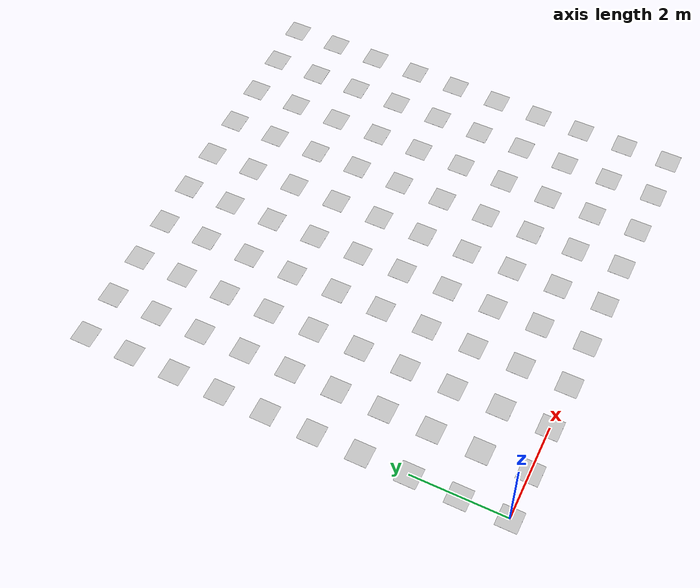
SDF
<sdf version="1.7">
 <world name="default">
  <model name="aruco_2_100">
   <static>1</static>
   <link name="aruco_2_100_link">
    <visual name="visual_marker_2_0">
     <pose>0 9 0 0 -0 1.5708</pose>
     <cast_shadows>0</cast_shadows>
     <geometry><box><size>0.446667 0.446667 0.001</size></box></geometry>
     <material>
      <script>
       <uri>model://aruco_map_txt/materials/scripts</uri>
       <uri>model://aruco_map_txt/materials/textures</uri>
       <name>aruco/marker_2_0</name>
      </script>
     </material>
    </visual>
    <visual name="visual_marker_2_1">
     <pose>1 9 0 0 -0 1.5708</pose>
     <cast_shadows>0</cast_shadows>
     <geometry><box><size>0.446667 0.446667 0.001</size></box></geometry>
     <material>
      <script>
       <uri>model://aruco_map_txt/materials/scripts</uri>
       <uri>model://aruco_map_txt/materials/textures</uri>
       <name>aruco/marker_2_1</name>
      </script>
     </material>
    </visual>
    <visual name="visual_marker_2_2">
     <pose>2 9 0 0 -0 1.5708</pose>
     <cast_shadows>0</cast_shadows>
     <geometry><box><size>0.446667 0.446667 0.001</size></box></geometry>
     <material>
      <script>
       <uri>model://aruco_map_txt/materials/scripts</uri>
       <uri>model://aruco_map_txt/materials/textures</uri>
       <name>aruco/marker_2_2</name>
      </script>
     </material>
    </visual>
    <visual name="visual_marker_2_3">
     <pose>3 9 0 0 -0 1.5708</pose>
     <cast_shadows>0</cast_shadows>
     <geometry><box><size>0.446667 0.446667 0.001</size></box></geometry>
     <material>
      <script>
       <uri>model://aruco_map_txt/materials/scripts</uri>
       <uri>model://aruco_map_txt/materials/textures</uri>
       <name>aruco/marker_2_3</name>
      </script>
     </material>
    </visual>
    <visual name="visual_marker_2_4">
     <pose>4 9 0 0 -0 1.5708</pose>
     <cast_shadows>0</cast_shadows>
     <geometry><box><size>0.446667 0.446667 0.001</size></box></geometry>
     <material>
      <script>
       <uri>model://aruco_map_txt/materials/scripts</uri>
       <uri>model://aruco_map_txt/materials/textures</uri>
       <name>aruco/marker_2_4</name>
      </script>
     </material>
    </visual>
    <visual name="visual_marker_2_5">
     <pose>5 9 0 0 -0 1.5708</pose>
     <cast_shadows>0</cast_shadows>
     <geometry><box><size>0.446667 0.446667 0.001</size></box></geometry>
     <material>
      <script>
       <uri>model://aruco_map_txt/materials/scripts</uri>
       <uri>model://aruco_map_txt/materials/textures</uri>
       <name>aruco/marker_2_5</name>
      </script>
     </material>
    </visual>
    <visual name="visual_marker_2_6">
     <pose>6 9 0 0 -0 1.5708</pose>
     <cast_shadows>0</cast_shadows>
     <geometry><box><size>0.446667 0.446667 0.001</size></box></geometry>
     <material>
      <script>
       <uri>model://aruco_map_txt/materials/scripts</uri>
       <uri>model://aruco_map_txt/materials/textures</uri>
       <name>aruco/marker_2_6</name>
      </script>
     </material>
    </visual>
    <visual name="visual_marker_2_7">
     <pose>7 9 0 0 -0 1.5708</pose>
     <cast_shadows>0</cast_shadows>
     <geometry><box><size>0.446667 0.446667 0.001</size></box></geometry>
     <material>
      <script>
       <uri>model://aruco_map_txt/materials/scripts</uri>
       <uri>model://aruco_map_txt/materials/textures</uri>
       <name>aruco/marker_2_7</name>
      </script>
     </material>
    </visual>
    <visual name="visual_marker_2_8">
     <pose>8 9 0 0 -0 1.5708</pose>
     <cast_shadows>0</cast_shadows>
     <geometry><box><size>0.446667 0.446667 0.001</size></box></geometry>
     <material>
      <script>
       <uri>model://aruco_map_txt/materials/scripts</uri>
       <uri>model://aruco_map_txt/materials/textures</uri>
       <name>aruco/marker_2_8</name>
      </script>
     </material>
    </visual>
    <visual name="visual_marker_2_9">
     <pose>9 9 0 0 -0 1.5708</pose>
     <cast_shadows>0</cast_shadows>
     <geometry><box><size>0.446667 0.446667 0.001</size></box></geometry>
     <material>
      <script>
       <uri>model://aruco_map_txt/materials/scripts</uri>
       <uri>model://aruco_map_txt/materials/textures</uri>
       <name>aruco/marker_2_9</name>
      </script>
     </material>
    </visual>
    <visual name="visual_marker_2_10">
     <pose>0 8 0 0 -0 1.5708</pose>
     <cast_shadows>0</cast_shadows>
     <geometry><box><size>0.446667 0.446667 0.001</size></box></geometry>
     <material>
      <script>
       <uri>model://aruco_map_txt/materials/scripts</uri>
       <uri>model://aruco_map_txt/materials/textures</uri>
       <name>aruco/marker_2_10</name>
      </script>
     </material>
    </visual>
    <visual name="visual_marker_2_11">
     <pose>1 8 0 0 -0 1.5708</pose>
     <cast_shadows>0</cast_shadows>
     <geometry><box><size>0.446667 0.446667 0.001</size></box></geometry>
     <material>
      <script>
       <uri>model://aruco_map_txt/materials/scripts</uri>
       <uri>model://aruco_map_txt/materials/textures</uri>
       <name>aruco/marker_2_11</name>
      </script>
     </material>
    </visual>
    <visual name="visual_marker_2_12">
     <pose>2 8 0 0 -0 1.5708</pose>
     <cast_shadows>0</cast_shadows>
     <geometry><box><size>0.446667 0.446667 0.001</size></box></geometry>
     <material>
      <script>
       <uri>model://aruco_map_txt/materials/scripts</uri>
       <uri>model://aruco_map_txt/materials/textures</uri>
       <name>aruco/marker_2_12</name>
      </script>
     </material>
    </visual>
    <visual name="visual_marker_2_13">
     <pose>3 8 0 0 -0 1.5708</pose>
     <cast_shadows>0</cast_shadows>
     <geometry><box><size>0.446667 0.446667 0.001</size></box></geometry>
     <material>
      <script>
       <uri>model://aruco_map_txt/materials/scripts</uri>
       <uri>model://aruco_map_txt/materials/textures</uri>
       <name>aruco/marker_2_13</name>
      </script>
     </material>
    </visual>
    <visual name="visual_marker_2_14">
     <pose>4 8 0 0 -0 1.5708</pose>
     <cast_shadows>0</cast_shadows>
     <geometry><box><size>0.446667 0.446667 0.001</size></box></geometry>
     <material>
      <script>
       <uri>model://aruco_map_txt/materials/scripts</uri>
       <uri>model://aruco_map_txt/materials/textures</uri>
       <name>aruco/marker_2_14</name>
      </script>
     </material>
    </visual>
    <visual name="visual_marker_2_15">
     <pose>5 8 0 0 -0 1.5708</pose>
     <cast_shadows>0</cast_shadows>
     <geometry><box><size>0.446667 0.446667 0.001</size></box></geometry>
     <material>
      <script>
       <uri>model://aruco_map_txt/materials/scripts</uri>
       <uri>model://aruco_map_txt/materials/textures</uri>
       <name>aruco/marker_2_15</name>
      </script>
     </material>
    </visual>
    <visual name="visual_marker_2_16">
     <pose>6 8 0 0 -0 1.5708</pose>
     <cast_shadows>0</cast_shadows>
     <geometry><box><size>0.446667 0.446667 0.001</size></box></geometry>
     <material>
      <script>
       <uri>model://aruco_map_txt/materials/scripts</uri>
       <uri>model://aruco_map_txt/materials/textures</uri>
       <name>aruco/marker_2_16</name>
      </script>
     </material>
    </visual>
    <visual name="visual_marker_2_17">
     <pose>7 8 0 0 -0 1.5708</pose>
     <cast_shadows>0</cast_shadows>
     <geometry><box><size>0.446667 0.446667 0.001</size></box></geometry>
     <material>
      <script>
       <uri>model://aruco_map_txt/materials/scripts</uri>
       <uri>model://aruco_map_txt/materials/textures</uri>
       <name>aruco/marker_2_17</name>
      </script>
     </material>
    </visual>
    <visual name="visual_marker_2_18">
     <pose>8 8 0 0 -0 1.5708</pose>
     <cast_shadows>0</cast_shadows>
     <geometry><box><size>0.446667 0.446667 0.001</size></box></geometry>
     <material>
      <script>
       <uri>model://aruco_map_txt/materials/scripts</uri>
       <uri>model://aruco_map_txt/materials/textures</uri>
       <name>aruco/marker_2_18</name>
      </script>
     </material>
    </visual>
    <visual name="visual_marker_2_19">
     <pose>9 8 0 0 -0 1.5708</pose>
     <cast_shadows>0</cast_shadows>
     <geometry><box><size>0.446667 0.446667 0.001</size></box></geometry>
     <material>
      <script>
       <uri>model://aruco_map_txt/materials/scripts</uri>
       <uri>model://aruco_map_txt/materials/textures</uri>
       <name>aruco/marker_2_19</name>
      </script>
     </material>
    </visual>
    <visual name="visual_marker_2_20">
     <pose>0 7 0 0 -0 1.5708</pose>
     <cast_shadows>0</cast_shadows>
     <geometry><box><size>0.446667 0.446667 0.001</size></box></geometry>
     <material>
      <script>
       <uri>model://aruco_map_txt/materials/scripts</uri>
       <uri>model://aruco_map_txt/materials/textures</uri>
       <name>aruco/marker_2_20</name>
      </script>
     </material>
    </visual>
    <visual name="visual_marker_2_21">
     <pose>1 7 0 0 -0 1.5708</pose>
     <cast_shadows>0</cast_shadows>
     <geometry><box><size>0.446667 0.446667 0.001</size></box></geometry>
     <material>
      <script>
       <uri>model://aruco_map_txt/materials/scripts</uri>
       <uri>model://aruco_map_txt/materials/textures</uri>
       <name>aruco/marker_2_21</name>
      </script>
     </material>
    </visual>
    <visual name="visual_marker_2_22">
     <pose>2 7 0 0 -0 1.5708</pose>
     <cast_shadows>0</cast_shadows>
     <geometry><box><size>0.446667 0.446667 0.001</size></box></geometry>
     <material>
      <script>
       <uri>model://aruco_map_txt/materials/scripts</uri>
       <uri>model://aruco_map_txt/materials/textures</uri>
       <name>aruco/marker_2_22</name>
      </script>
     </material>
    </visual>
    <visual name="visual_marker_2_23">
     <pose>3 7 0 0 -0 1.5708</pose>
     <cast_shadows>0</cast_shadows>
     <geometry><box><size>0.446667 0.446667 0.001</size></box></geometry>
     <material>
      <script>
       <uri>model://aruco_map_txt/materials/scripts</uri>
       <uri>model://aruco_map_txt/materials/textures</uri>
       <name>aruco/marker_2_23</name>
      </script>
     </material>
    </visual>
    <visual name="visual_marker_2_24">
     <pose>4 7 0 0 -0 1.5708</pose>
     <cast_shadows>0</cast_shadows>
     <geometry><box><size>0.446667 0.446667 0.001</size></box></geometry>
     <material>
      <script>
       <uri>model://aruco_map_txt/materials/scripts</uri>
       <uri>model://aruco_map_txt/materials/textures</uri>
       <name>aruco/marker_2_24</name>
      </script>
     </material>
    </visual>
    <visual name="visual_marker_2_25">
     <pose>5 7 0 0 -0 1.5708</pose>
     <cast_shadows>0</cast_shadows>
     <geometry><box><size>0.446667 0.446667 0.001</size></box></geometry>
     <material>
      <script>
       <uri>model://aruco_map_txt/materials/scripts</uri>
       <uri>model://aruco_map_txt/materials/textures</uri>
       <name>aruco/marker_2_25</name>
      </script>
     </material>
    </visual>
    <visual name="visual_marker_2_26">
     <pose>6 7 0 0 -0 1.5708</pose>
     <cast_shadows>0</cast_shadows>
     <geometry><box><size>0.446667 0.446667 0.001</size></box></geometry>
     <material>
      <script>
       <uri>model://aruco_map_txt/materials/scripts</uri>
       <uri>model://aruco_map_txt/materials/textures</uri>
       <name>aruco/marker_2_26</name>
      </script>
     </material>
    </visual>
    <visual name="visual_marker_2_27">
     <pose>7 7 0 0 -0 1.5708</pose>
     <cast_shadows>0</cast_shadows>
     <geometry><box><size>0.446667 0.446667 0.001</size></box></geometry>
     <material>
      <script>
       <uri>model://aruco_map_txt/materials/scripts</uri>
       <uri>model://aruco_map_txt/materials/textures</uri>
       <name>aruco/marker_2_27</name>
      </script>
     </material>
    </visual>
    <visual name="visual_marker_2_28">
     <pose>8 7 0 0 -0 1.5708</pose>
     <cast_shadows>0</cast_shadows>
     <geometry><box><size>0.446667 0.446667 0.001</size></box></geometry>
     <material>
      <script>
       <uri>model://aruco_map_txt/materials/scripts</uri>
       <uri>model://aruco_map_txt/materials/textures</uri>
       <name>aruco/marker_2_28</name>
      </script>
     </material>
    </visual>
    <visual name="visual_marker_2_29">
     <pose>9 7 0 0 -0 1.5708</pose>
     <cast_shadows>0</cast_shadows>
     <geometry><box><size>0.446667 0.446667 0.001</size></box></geometry>
     <material>
      <script>
       <uri>model://aruco_map_txt/materials/scripts</uri>
       <uri>model://aruco_map_txt/materials/textures</uri>
       <name>aruco/marker_2_29</name>
      </script>
     </material>
    </visual>
    <visual name="visual_marker_2_30">
     <pose>0 6 0 0 -0 1.5708</pose>
     <cast_shadows>0</cast_shadows>
     <geometry><box><size>0.446667 0.446667 0.001</size></box></geometry>
     <material>
      <script>
       <uri>model://aruco_map_txt/materials/scripts</uri>
       <uri>model://aruco_map_txt/materials/textures</uri>
       <name>aruco/marker_2_30</name>
      </script>
     </material>
    </visual>
    <visual name="visual_marker_2_31">
     <pose>1 6 0 0 -0 1.5708</pose>
     <cast_shadows>0</cast_shadows>
     <geometry><box><size>0.446667 0.446667 0.001</size></box></geometry>
     <material>
      <script>
       <uri>model://aruco_map_txt/materials/scripts</uri>
       <uri>model://aruco_map_txt/materials/textures</uri>
       <name>aruco/marker_2_31</name>
      </script>
     </material>
    </visual>
    <visual name="visual_marker_2_32">
     <pose>2 6 0 0 -0 1.5708</pose>
     <cast_shadows>0</cast_shadows>
     <geometry><box><size>0.446667 0.446667 0.001</size></box></geometry>
     <material>
      <script>
       <uri>model://aruco_map_txt/materials/scripts</uri>
       <uri>model://aruco_map_txt/materials/textures</uri>
       <name>aruco/marker_2_32</name>
      </script>
     </material>
    </visual>
    <visual name="visual_marker_2_33">
     <pose>3 6 0 0 -0 1.5708</pose>
     <cast_shadows>0</cast_shadows>
     <geometry><box><size>0.446667 0.446667 0.001</size></box></geometry>
     <material>
      <script>
       <uri>model://aruco_map_txt/materials/scripts</uri>
       <uri>model://aruco_map_txt/materials/textures</uri>
       <name>aruco/marker_2_33</name>
      </script>
     </material>
    </visual>
    <visual name="visual_marker_2_34">
     <pose>4 6 0 0 -0 1.5708</pose>
     <cast_shadows>0</cast_shadows>
     <geometry><box><size>0.446667 0.446667 0.001</size></box></geometry>
     <material>
      <script>
       <uri>model://aruco_map_txt/materials/scripts</uri>
       <uri>model://aruco_map_txt/materials/textures</uri>
       <name>aruco/marker_2_34</name>
      </script>
     </material>
    </visual>
    <visual name="visual_marker_2_35">
     <pose>5 6 0 0 -0 1.5708</pose>
     <cast_shadows>0</cast_shadows>
     <geometry><box><size>0.446667 0.446667 0.001</size></box></geometry>
     <material>
      <script>
       <uri>model://aruco_map_txt/materials/scripts</uri>
       <uri>model://aruco_map_txt/materials/textures</uri>
       <name>aruco/marker_2_35</name>
      </script>
     </material>
    </visual>
    <visual name="visual_marker_2_36">
     <pose>6 6 0 0 -0 1.5708</pose>
     <cast_shadows>0</cast_shadows>
     <geometry><box><size>0.446667 0.446667 0.001</size></box></geometry>
     <material>
      <script>
       <uri>model://aruco_map_txt/materials/scripts</uri>
       <uri>model://aruco_map_txt/materials/textures</uri>
       <name>aruco/marker_2_36</name>
      </script>
     </material>
    </visual>
    <visual name="visual_marker_2_37">
     <pose>7 6 0 0 -0 1.5708</pose>
     <cast_shadows>0</cast_shadows>
     <geometry><box><size>0.446667 0.446667 0.001</size></box></geometry>
     <material>
      <script>
       <uri>model://aruco_map_txt/materials/scripts</uri>
       <uri>model://aruco_map_txt/materials/textures</uri>
       <name>aruco/marker_2_37</name>
      </script>
     </material>
    </visual>
    <visual name="visual_marker_2_38">
     <pose>8 6 0 0 -0 1.5708</pose>
     <cast_shadows>0</cast_shadows>
     <geometry><box><size>0.446667 0.446667 0.001</size></box></geometry>
     <material>
      <script>
       <uri>model://aruco_map_txt/materials/scripts</uri>
       <uri>model://aruco_map_txt/materials/textures</uri>
       <name>aruco/marker_2_38</name>
      </script>
     </material>
    </visual>
    <visual name="visual_marker_2_39">
     <pose>9 6 0 0 -0 1.5708</pose>
     <cast_shadows>0</cast_shadows>
     <geometry><box><size>0.446667 0.446667 0.001</size></box></geometry>
     <material>
      <script>
       <uri>model://aruco_map_txt/materials/scripts</uri>
       <uri>model://aruco_map_txt/materials/textures</uri>
       <name>aruco/marker_2_39</name>
      </script>
     </material>
    </visual>
    <visual name="visual_marker_2_40">
     <pose>0 5 0 0 -0 1.5708</pose>
     <cast_shadows>0</cast_shadows>
     <geometry><box><size>0.446667 0.446667 0.001</size></box></geometry>
     <material>
      <script>
       <uri>model://aruco_map_txt/materials/scripts</uri>
       <uri>model://aruco_map_txt/materials/textures</uri>
       <name>aruco/marker_2_40</name>
      </script>
     </material>
    </visual>
    <visual name="visual_marker_2_41">
     <pose>1 5 0 0 -0 1.5708</pose>
     <cast_shadows>0</cast_shadows>
     <geometry><box><size>0.446667 0.446667 0.001</size></box></geometry>
     <material>
      <script>
       <uri>model://aruco_map_txt/materials/scripts</uri>
       <uri>model://aruco_map_txt/materials/textures</uri>
       <name>aruco/marker_2_41</name>
      </script>
     </material>
    </visual>
    <visual name="visual_marker_2_42">
     <pose>2 5 0 0 -0 1.5708</pose>
     <cast_shadows>0</cast_shadows>
     <geometry><box><size>0.446667 0.446667 0.001</size></box></geometry>
     <material>
      <script>
       <uri>model://aruco_map_txt/materials/scripts</uri>
       <uri>model://aruco_map_txt/materials/textures</uri>
       <name>aruco/marker_2_42</name>
      </script>
     </material>
    </visual>
    <visual name="visual_marker_2_43">
     <pose>3 5 0 0 -0 1.5708</pose>
     <cast_shadows>0</cast_shadows>
     <geometry><box><size>0.446667 0.446667 0.001</size></box></geometry>
     <material>
      <script>
       <uri>model://aruco_map_txt/materials/scripts</uri>
       <uri>model://aruco_map_txt/materials/textures</uri>
       <name>aruco/marker_2_43</name>
      </script>
     </material>
    </visual>
    <visual name="visual_marker_2_44">
     <pose>4 5 0 0 -0 1.5708</pose>
     <cast_shadows>0</cast_shadows>
     <geometry><box><size>0.446667 0.446667 0.001</size></box></geometry>
     <material>
      <script>
       <uri>model://aruco_map_txt/materials/scripts</uri>
       <uri>model://aruco_map_txt/materials/textures</uri>
       <name>aruco/marker_2_44</name>
      </script>
     </material>
    </visual>
    <visual name="visual_marker_2_45">
     <pose>5 5 0 0 -0 1.5708</pose>
     <cast_shadows>0</cast_shadows>
     <geometry><box><size>0.446667 0.446667 0.001</size></box></geometry>
     <material>
      <script>
       <uri>model://aruco_map_txt/materials/scripts</uri>
       <uri>model://aruco_map_txt/materials/textures</uri>
       <name>aruco/marker_2_45</name>
      </script>
     </material>
    </visual>
    <visual name="visual_marker_2_46">
     <pose>6 5 0 0 -0 1.5708</pose>
     <cast_shadows>0</cast_shadows>
     <geometry><box><size>0.446667 0.446667 0.001</size></box></geometry>
     <material>
      <script>
       <uri>model://aruco_map_txt/materials/scripts</uri>
       <uri>model://aruco_map_txt/materials/textures</uri>
       <name>aruco/marker_2_46</name>
      </script>
     </material>
    </visual>
    <visual name="visual_marker_2_47">
     <pose>7 5 0 0 -0 1.5708</pose>
     <cast_shadows>0</cast_shadows>
     <geometry><box><size>0.446667 0.446667 0.001</size></box></geometry>
     <material>
      <script>
       <uri>model://aruco_map_txt/materials/scripts</uri>
       <uri>model://aruco_map_txt/materials/textures</uri>
       <name>aruco/marker_2_47</name>
      </script>
     </material>
    </visual>
    <visual name="visual_marker_2_48">
     <pose>8 5 0 0 -0 1.5708</pose>
     <cast_shadows>0</cast_shadows>
     <geometry><box><size>0.446667 0.446667 0.001</size></box></geometry>
     <material>
      <script>
       <uri>model://aruco_map_txt/materials/scripts</uri>
       <uri>model://aruco_map_txt/materials/textures</uri>
       <name>aruco/marker_2_48</name>
      </script>
     </material>
    </visual>
    <visual name="visual_marker_2_49">
     <pose>9 5 0 0 -0 1.5708</pose>
     <cast_shadows>0</cast_shadows>
     <geometry><box><size>0.446667 0.446667 0.001</size></box></geometry>
     <material>
      <script>
       <uri>model://aruco_map_txt/materials/scripts</uri>
       <uri>model://aruco_map_txt/materials/textures</uri>
       <name>aruco/marker_2_49</name>
      </script>
     </material>
    </visual>
    <visual name="visual_marker_2_50">
     <pose>0 4 0 0 -0 1.5708</pose>
     <cast_shadows>0</cast_shadows>
     <geometry><box><size>0.446667 0.446667 0.001</size></box></geometry>
     <material>
      <script>
       <uri>model://aruco_map_txt/materials/scripts</uri>
       <uri>model://aruco_map_txt/materials/textures</uri>
       <name>aruco/marker_2_50</name>
      </script>
     </material>
    </visual>
    <visual name="visual_marker_2_51">
     <pose>1 4 0 0 -0 1.5708</pose>
     <cast_shadows>0</cast_shadows>
     <geometry><box><size>0.446667 0.446667 0.001</size></box></geometry>
     <material>
      <script>
       <uri>model://aruco_map_txt/materials/scripts</uri>
       <uri>model://aruco_map_txt/materials/textures</uri>
       <name>aruco/marker_2_51</name>
      </script>
     </material>
    </visual>
    <visual name="visual_marker_2_52">
     <pose>2 4 0 0 -0 1.5708</pose>
     <cast_shadows>0</cast_shadows>
     <geometry><box><size>0.446667 0.446667 0.001</size></box></geometry>
     <material>
      <script>
       <uri>model://aruco_map_txt/materials/scripts</uri>
       <uri>model://aruco_map_txt/materials/textures</uri>
       <name>aruco/marker_2_52</name>
      </script>
     </material>
    </visual>
    <visual name="visual_marker_2_53">
     <pose>3 4 0 0 -0 1.5708</pose>
     <cast_shadows>0</cast_shadows>
     <geometry><box><size>0.446667 0.446667 0.001</size></box></geometry>
     <material>
      <script>
       <uri>model://aruco_map_txt/materials/scripts</uri>
       <uri>model://aruco_map_txt/materials/textures</uri>
       <name>aruco/marker_2_53</name>
      </script>
     </material>
    </visual>
    <visual name="visual_marker_2_54">
     <pose>4 4 0 0 -0 1.5708</pose>
     <cast_shadows>0</cast_shadows>
     <geometry><box><size>0.446667 0.446667 0.001</size></box></geometry>
     <material>
      <script>
       <uri>model://aruco_map_txt/materials/scripts</uri>
       <uri>model://aruco_map_txt/materials/textures</uri>
       <name>aruco/marker_2_54</name>
      </script>
     </material>
    </visual>
    <visual name="visual_marker_2_55">
     <pose>5 4 0 0 -0 1.5708</pose>
     <cast_shadows>0</cast_shadows>
     <geometry><box><size>0.446667 0.446667 0.001</size></box></geometry>
     <material>
      <script>
       <uri>model://aruco_map_txt/materials/scripts</uri>
       <uri>model://aruco_map_txt/materials/textures</uri>
       <name>aruco/marker_2_55</name>
      </script>
     </material>
    </visual>
    <visual name="visual_marker_2_56">
     <pose>6 4 0 0 -0 1.5708</pose>
     <cast_shadows>0</cast_shadows>
     <geometry><box><size>0.446667 0.446667 0.001</size></box></geometry>
     <material>
      <script>
       <uri>model://aruco_map_txt/materials/scripts</uri>
       <uri>model://aruco_map_txt/materials/textures</uri>
       <name>aruco/marker_2_56</name>
      </script>
     </material>
    </visual>
    <visual name="visual_marker_2_57">
     <pose>7 4 0 0 -0 1.5708</pose>
     <cast_shadows>0</cast_shadows>
     <geometry><box><size>0.446667 0.446667 0.001</size></box></geometry>
     <material>
      <script>
       <uri>model://aruco_map_txt/materials/scripts</uri>
       <uri>model://aruco_map_txt/materials/textures</uri>
       <name>aruco/marker_2_57</name>
      </script>
     </material>
    </visual>
    <visual name="visual_marker_2_58">
     <pose>8 4 0 0 -0 1.5708</pose>
     <cast_shadows>0</cast_shadows>
     <geometry><box><size>0.446667 0.446667 0.001</size></box></geometry>
     <material>
      <script>
       <uri>model://aruco_map_txt/materials/scripts</uri>
       <uri>model://aruco_map_txt/materials/textures</uri>
       <name>aruco/marker_2_58</name>
      </script>
     </material>
    </visual>
    <visual name="visual_marker_2_59">
     <pose>9 4 0 0 -0 1.5708</pose>
     <cast_shadows>0</cast_shadows>
     <geometry><box><size>0.446667 0.446667 0.001</size></box></geometry>
     <material>
      <script>
       <uri>model://aruco_map_txt/materials/scripts</uri>
       <uri>model://aruco_map_txt/materials/textures</uri>
       <name>aruco/marker_2_59</name>
      </script>
     </material>
    </visual>
    <visual name="visual_marker_2_60">
     <pose>0 3 0 0 -0 1.5708</pose>
     <cast_shadows>0</cast_shadows>
     <geometry><box><size>0.446667 0.446667 0.001</size></box></geometry>
     <material>
      <script>
       <uri>model://aruco_map_txt/materials/scripts</uri>
       <uri>model://aruco_map_txt/materials/textures</uri>
       <name>aruco/marker_2_60</name>
      </script>
     </material>
    </visual>
    <visual name="visual_marker_2_61">
     <pose>1 3 0 0 -0 1.5708</pose>
     <cast_shadows>0</cast_shadows>
     <geometry><box><size>0.446667 0.446667 0.001</size></box></geometry>
     <material>
      <script>
       <uri>model://aruco_map_txt/materials/scripts</uri>
       <uri>model://aruco_map_txt/materials/textures</uri>
       <name>aruco/marker_2_61</name>
      </script>
     </material>
    </visual>
    <visual name="visual_marker_2_62">
     <pose>2 3 0 0 -0 1.5708</pose>
     <cast_shadows>0</cast_shadows>
     <geometry><box><size>0.446667 0.446667 0.001</size></box></geometry>
     <material>
      <script>
       <uri>model://aruco_map_txt/materials/scripts</uri>
       <uri>model://aruco_map_txt/materials/textures</uri>
       <name>aruco/marker_2_62</name>
      </script>
     </material>
    </visual>
    <visual name="visual_marker_2_63">
     <pose>3 3 0 0 -0 1.5708</pose>
     <cast_shadows>0</cast_shadows>
     <geometry><box><size>0.446667 0.446667 0.001</size></box></geometry>
     <material>
      <script>
       <uri>model://aruco_map_txt/materials/scripts</uri>
       <uri>model://aruco_map_txt/materials/textures</uri>
       <name>aruco/marker_2_63</name>
      </script>
     </material>
    </visual>
    <visual name="visual_marker_2_64">
     <pose>4 3 0 0 -0 1.5708</pose>
     <cast_shadows>0</cast_shadows>
     <geometry><box><size>0.446667 0.446667 0.001</size></box></geometry>
     <material>
      <script>
       <uri>model://aruco_map_txt/materials/scripts</uri>
       <uri>model://aruco_map_txt/materials/textures</uri>
       <name>aruco/marker_2_64</name>
      </script>
     </material>
    </visual>
    <visual name="visual_marker_2_65">
     <pose>5 3 0 0 -0 1.5708</pose>
     <cast_shadows>0</cast_shadows>
     <geometry><box><size>0.446667 0.446667 0.001</size></box></geometry>
     <material>
      <script>
       <uri>model://aruco_map_txt/materials/scripts</uri>
       <uri>model://aruco_map_txt/materials/textures</uri>
       <name>aruco/marker_2_65</name>
      </script>
     </material>
    </visual>
    <visual name="visual_marker_2_66">
     <pose>6 3 0 0 -0 1.5708</pose>
     <cast_shadows>0</cast_shadows>
     <geometry><box><size>0.446667 0.446667 0.001</size></box></geometry>
     <material>
      <script>
       <uri>model://aruco_map_txt/materials/scripts</uri>
       <uri>model://aruco_map_txt/materials/textures</uri>
       <name>aruco/marker_2_66</name>
      </script>
     </material>
    </visual>
    <visual name="visual_marker_2_67">
     <pose>7 3 0 0 -0 1.5708</pose>
     <cast_shadows>0</cast_shadows>
     <geometry><box><size>0.446667 0.446667 0.001</size></box></geometry>
     <material>
      <script>
       <uri>model://aruco_map_txt/materials/scripts</uri>
       <uri>model://aruco_map_txt/materials/textures</uri>
       <name>aruco/marker_2_67</name>
      </script>
     </material>
    </visual>
    <visual name="visual_marker_2_68">
     <pose>8 3 0 0 -0 1.5708</pose>
     <cast_shadows>0</cast_shadows>
     <geometry><box><size>0.446667 0.446667 0.001</size></box></geometry>
     <material>
      <script>
       <uri>model://aruco_map_txt/materials/scripts</uri>
       <uri>model://aruco_map_txt/materials/textures</uri>
       <name>aruco/marker_2_68</name>
      </script>
     </material>
    </visual>
    <visual name="visual_marker_2_69">
     <pose>9 3 0 0 -0 1.5708</pose>
     <cast_shadows>0</cast_shadows>
     <geometry><box><size>0.446667 0.446667 0.001</size></box></geometry>
     <material>
      <script>
       <uri>model://aruco_map_txt/materials/scripts</uri>
       <uri>model://aruco_map_txt/materials/textures</uri>
       <name>aruco/marker_2_69</name>
      </script>
     </material>
    </visual>
    <visual name="visual_marker_2_70">
     <pose>0 2 0 0 -0 1.5708</pose>
     <cast_shadows>0</cast_shadows>
     <geometry><box><size>0.446667 0.446667 0.001</size></box></geometry>
     <material>
      <script>
       <uri>model://aruco_map_txt/materials/scripts</uri>
       <uri>model://aruco_map_txt/materials/textures</uri>
       <name>aruco/marker_2_70</name>
      </script>
     </material>
    </visual>
    <visual name="visual_marker_2_71">
     <pose>1 2 0 0 -0 1.5708</pose>
     <cast_shadows>0</cast_shadows>
     <geometry><box><size>0.446667 0.446667 0.001</size></box></geometry>
     <material>
      <script>
       <uri>model://aruco_map_txt/materials/scripts</uri>
       <uri>model://aruco_map_txt/materials/textures</uri>
       <name>aruco/marker_2_71</name>
      </script>
     </material>
    </visual>
    <visual name="visual_marker_2_72">
     <pose>2 2 0 0 -0 1.5708</pose>
     <cast_shadows>0</cast_shadows>
     <geometry><box><size>0.446667 0.446667 0.001</size></box></geometry>
     <material>
      <script>
       <uri>model://aruco_map_txt/materials/scripts</uri>
       <uri>model://aruco_map_txt/materials/textures</uri>
       <name>aruco/marker_2_72</name>
      </script>
     </material>
    </visual>
    <visual name="visual_marker_2_73">
     <pose>3 2 0 0 -0 1.5708</pose>
     <cast_shadows>0</cast_shadows>
     <geometry><box><size>0.446667 0.446667 0.001</size></box></geometry>
     <material>
      <script>
       <uri>model://aruco_map_txt/materials/scripts</uri>
       <uri>model://aruco_map_txt/materials/textures</uri>
       <name>aruco/marker_2_73</name>
      </script>
     </material>
    </visual>
    <visual name="visual_marker_2_74">
     <pose>4 2 0 0 -0 1.5708</pose>
     <cast_shadows>0</cast_shadows>
     <geometry><box><size>0.446667 0.446667 0.001</size></box></geometry>
     <material>
      <script>
       <uri>model://aruco_map_txt/materials/scripts</uri>
       <uri>model://aruco_map_txt/materials/textures</uri>
       <name>aruco/marker_2_74</name>
      </script>
     </material>
    </visual>
    <visual name="visual_marker_2_75">
     <pose>5 2 0 0 -0 1.5708</pose>
     <cast_shadows>0</cast_shadows>
     <geometry><box><size>0.446667 0.446667 0.001</size></box></geometry>
     <material>
      <script>
       <uri>model://aruco_map_txt/materials/scripts</uri>
       <uri>model://aruco_map_txt/materials/textures</uri>
       <name>aruco/marker_2_75</name>
      </script>
     </material>
    </visual>
    <visual name="visual_marker_2_76">
     <pose>6 2 0 0 -0 1.5708</pose>
     <cast_shadows>0</cast_shadows>
     <geometry><box><size>0.446667 0.446667 0.001</size></box></geometry>
     <material>
      <script>
       <uri>model://aruco_map_txt/materials/scripts</uri>
       <uri>model://aruco_map_txt/materials/textures</uri>
       <name>aruco/marker_2_76</name>
      </script>
     </material>
    </visual>
    <visual name="visual_marker_2_77">
     <pose>7 2 0 0 -0 1.5708</pose>
     <cast_shadows>0</cast_shadows>
     <geometry><box><size>0.446667 0.446667 0.001</size></box></geometry>
     <material>
      <script>
       <uri>model://aruco_map_txt/materials/scripts</uri>
       <uri>model://aruco_map_txt/materials/textures</uri>
       <name>aruco/marker_2_77</name>
      </script>
     </material>
    </visual>
    <visual name="visual_marker_2_78">
     <pose>8 2 0 0 -0 1.5708</pose>
     <cast_shadows>0</cast_shadows>
     <geometry><box><size>0.446667 0.446667 0.001</size></box></geometry>
     <material>
      <script>
       <uri>model://aruco_map_txt/materials/scripts</uri>
       <uri>model://aruco_map_txt/materials/textures</uri>
       <name>aruco/marker_2_78</name>
      </script>
     </material>
    </visual>
    <visual name="visual_marker_2_79">
     <pose>9 2 0 0 -0 1.5708</pose>
     <cast_shadows>0</cast_shadows>
     <geometry><box><size>0.446667 0.446667 0.001</size></box></geometry>
     <material>
      <script>
       <uri>model://aruco_map_txt/materials/scripts</uri>
       <uri>model://aruco_map_txt/materials/textures</uri>
       <name>aruco/marker_2_79</name>
      </script>
     </material>
    </visual>
    <visual name="visual_marker_2_80">
     <pose>0 1 0 0 -0 1.5708</pose>
     <cast_shadows>0</cast_shadows>
     <geometry><box><size>0.446667 0.446667 0.001</size></box></geometry>
     <material>
      <script>
       <uri>model://aruco_map_txt/materials/scripts</uri>
       <uri>model://aruco_map_txt/materials/textures</uri>
       <name>aruco/marker_2_80</name>
      </script>
     </material>
    </visual>
    <visual name="visual_marker_2_81">
     <pose>1 1 0 0 -0 1.5708</pose>
     <cast_shadows>0</cast_shadows>
     <geometry><box><size>0.446667 0.446667 0.001</size></box></geometry>
     <material>
      <script>
       <uri>model://aruco_map_txt/materials/scripts</uri>
       <uri>model://aruco_map_txt/materials/textures</uri>
       <name>aruco/marker_2_81</name>
      </script>
     </material>
    </visual>
    <visual name="visual_marker_2_82">
     <pose>2 1 0 0 -0 1.5708</pose>
     <cast_shadows>0</cast_shadows>
     <geometry><box><size>0.446667 0.446667 0.001</size></box></geometry>
     <material>
      <script>
       <uri>model://aruco_map_txt/materials/scripts</uri>
       <uri>model://aruco_map_txt/materials/textures</uri>
       <name>aruco/marker_2_82</name>
      </script>
     </material>
    </visual>
    <visual name="visual_marker_2_83">
     <pose>3 1 0 0 -0 1.5708</pose>
     <cast_shadows>0</cast_shadows>
     <geometry><box><size>0.446667 0.446667 0.001</size></box></geometry>
     <material>
      <script>
       <uri>model://aruco_map_txt/materials/scripts</uri>
       <uri>model://aruco_map_txt/materials/textures</uri>
       <name>aruco/marker_2_83</name>
      </script>
     </material>
    </visual>
    <visual name="visual_marker_2_84">
     <pose>4 1 0 0 -0 1.5708</pose>
     <cast_shadows>0</cast_shadows>
     <geometry><box><size>0.446667 0.446667 0.001</size></box></geometry>
     <material>
      <script>
       <uri>model://aruco_map_txt/materials/scripts</uri>
       <uri>model://aruco_map_txt/materials/textures</uri>
       <name>aruco/marker_2_84</name>
      </script>
     </material>
    </visual>
    <visual name="visual_marker_2_85">
     <pose>5 1 0 0 -0 1.5708</pose>
     <cast_shadows>0</cast_shadows>
     <geometry><box><size>0.446667 0.446667 0.001</size></box></geometry>
     <material>
      <script>
       <uri>model://aruco_map_txt/materials/scripts</uri>
       <uri>model://aruco_map_txt/materials/textures</uri>
       <name>aruco/marker_2_85</name>
      </script>
     </material>
    </visual>
    <visual name="visual_marker_2_86">
     <pose>6 1 0 0 -0 1.5708</pose>
     <cast_shadows>0</cast_shadows>
     <geometry><box><size>0.446667 0.446667 0.001</size></box></geometry>
     <material>
      <script>
       <uri>model://aruco_map_txt/materials/scripts</uri>
       <uri>model://aruco_map_txt/materials/textures</uri>
       <name>aruco/marker_2_86</name>
      </script>
     </material>
    </visual>
    <visual name="visual_marker_2_87">
     <pose>7 1 0 0 -0 1.5708</pose>
     <cast_shadows>0</cast_shadows>
     <geometry><box><size>0.446667 0.446667 0.001</size></box></geometry>
     <material>
      <script>
       <uri>model://aruco_map_txt/materials/scripts</uri>
       <uri>model://aruco_map_txt/materials/textures</uri>
       <name>aruco/marker_2_87</name>
      </script>
     </material>
    </visual>
    <visual name="visual_marker_2_88">
     <pose>8 1 0 0 -0 1.5708</pose>
     <cast_shadows>0</cast_shadows>
     <geometry><box><size>0.446667 0.446667 0.001</size></box></geometry>
     <material>
      <script>
       <uri>model://aruco_map_txt/materials/scripts</uri>
       <uri>model://aruco_map_txt/materials/textures</uri>
       <name>aruco/marker_2_88</name>
      </script>
     </material>
    </visual>
    <visual name="visual_marker_2_89">
     <pose>9 1 0 0 -0 1.5708</pose>
     <cast_shadows>0</cast_shadows>
     <geometry><box><size>0.446667 0.446667 0.001</size></box></geometry>
     <material>
      <script>
       <uri>model://aruco_map_txt/materials/scripts</uri>
       <uri>model://aruco_map_txt/materials/textures</uri>
       <name>aruco/marker_2_89</name>
      </script>
     </material>
    </visual>
    <visual name="visual_marker_2_90">
     <pose>0 0 0 0 -0 1.5708</pose>
     <cast_shadows>0</cast_shadows>
     <geometry><box><size>0.446667 0.446667 0.001</size></box></geometry>
     <material>
      <script>
       <uri>model://aruco_map_txt/materials/scripts</uri>
       <uri>model://aruco_map_txt/materials/textures</uri>
       <name>aruco/marker_2_90</name>
      </script>
     </material>
    </visual>
    <visual name="visual_marker_2_91">
     <pose>1 0 0 0 -0 1.5708</pose>
     <cast_shadows>0</cast_shadows>
     <geometry><box><size>0.446667 0.446667 0.001</size></box></geometry>
     <material>
      <script>
       <uri>model://aruco_map_txt/materials/scripts</uri>
       <uri>model://aruco_map_txt/materials/textures</uri>
       <name>aruco/marker_2_91</name>
      </script>
     </material>
    </visual>
    <visual name="visual_marker_2_92">
     <pose>2 0 0 0 -0 1.5708</pose>
     <cast_shadows>0</cast_shadows>
     <geometry><box><size>0.446667 0.446667 0.001</size></box></geometry>
     <material>
      <script>
       <uri>model://aruco_map_txt/materials/scripts</uri>
       <uri>model://aruco_map_txt/materials/textures</uri>
       <name>aruco/marker_2_92</name>
      </script>
     </material>
    </visual>
    <visual name="visual_marker_2_93">
     <pose>3 0 0 0 -0 1.5708</pose>
     <cast_shadows>0</cast_shadows>
     <geometry><box><size>0.446667 0.446667 0.001</size></box></geometry>
     <material>
      <script>
       <uri>model://aruco_map_txt/materials/scripts</uri>
       <uri>model://aruco_map_txt/materials/textures</uri>
       <name>aruco/marker_2_93</name>
      </script>
     </material>
    </visual>
    <visual name="visual_marker_2_94">
     <pose>4 0 0 0 -0 1.5708</pose>
     <cast_shadows>0</cast_shadows>
     <geometry><box><size>0.446667 0.446667 0.001</size></box></geometry>
     <material>
      <script>
       <uri>model://aruco_map_txt/materials/scripts</uri>
       <uri>model://aruco_map_txt/materials/textures</uri>
       <name>aruco/marker_2_94</name>
      </script>
     </material>
    </visual>
    <visual name="visual_marker_2_95">
     <pose>5 0 0 0 -0 1.5708</pose>
     <cast_shadows>0</cast_shadows>
     <geometry><box><size>0.446667 0.446667 0.001</size></box></geometry>
     <material>
      <script>
       <uri>model://aruco_map_txt/materials/scripts</uri>
       <uri>model://aruco_map_txt/materials/textures</uri>
       <name>aruco/marker_2_95</name>
      </script>
     </material>
    </visual>
    <visual name="visual_marker_2_96">
     <pose>6 0 0 0 -0 1.5708</pose>
     <cast_shadows>0</cast_shadows>
     <geometry><box><size>0.446667 0.446667 0.001</size></box></geometry>
     <material>
      <script>
       <uri>model://aruco_map_txt/materials/scripts</uri>
       <uri>model://aruco_map_txt/materials/textures</uri>
       <name>aruco/marker_2_96</name>
      </script>
     </material>
    </visual>
    <visual name="visual_marker_2_97">
     <pose>7 0 0 0 -0 1.5708</pose>
     <cast_shadows>0</cast_shadows>
     <geometry><box><size>0.446667 0.446667 0.001</size></box></geometry>
     <material>
      <script>
       <uri>model://aruco_map_txt/materials/scripts</uri>
       <uri>model://aruco_map_txt/materials/textures</uri>
       <name>aruco/marker_2_97</name>
      </script>
     </material>
    </visual>
    <visual name="visual_marker_2_98">
     <pose>8 0 0 0 -0 1.5708</pose>
     <cast_shadows>0</cast_shadows>
     <geometry><box><size>0.446667 0.446667 0.001</size></box></geometry>
     <material>
      <script>
       <uri>model://aruco_map_txt/materials/scripts</uri>
       <uri>model://aruco_map_txt/materials/textures</uri>
       <name>aruco/marker_2_98</name>
      </script>
     </material>
    </visual>
    <visual name="visual_marker_2_99">
     <pose>9 0 0 0 -0 1.5708</pose>
     <cast_shadows>0</cast_shadows>
     <geometry><box><size>0.446667 0.446667 0.001</size></box></geometry>
     <material>
      <script>
       <uri>model://aruco_map_txt/materials/scripts</uri>
       <uri>model://aruco_map_txt/materials/textures</uri>
       <name>aruco/marker_2_99</name>
      </script>
     </material>
    </visual>
   </link>
  </model>
 </world>
</sdf>
